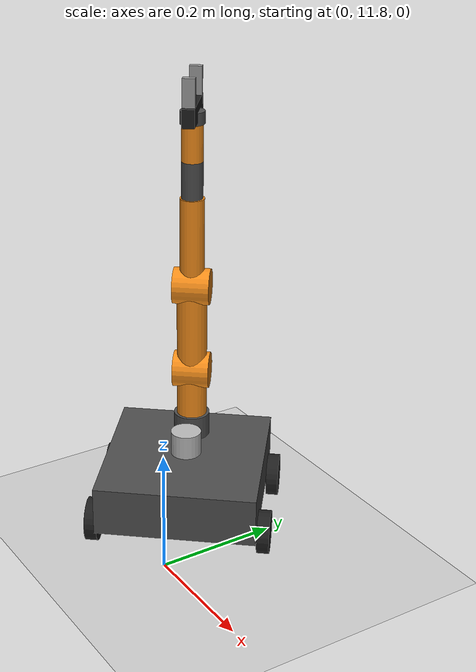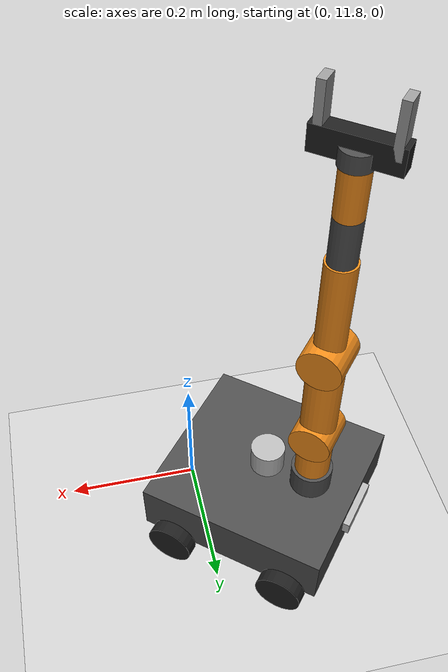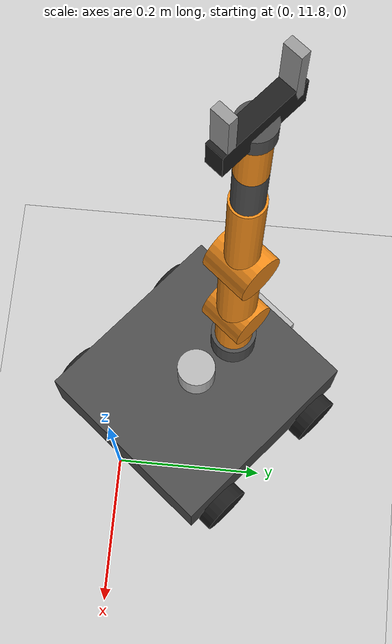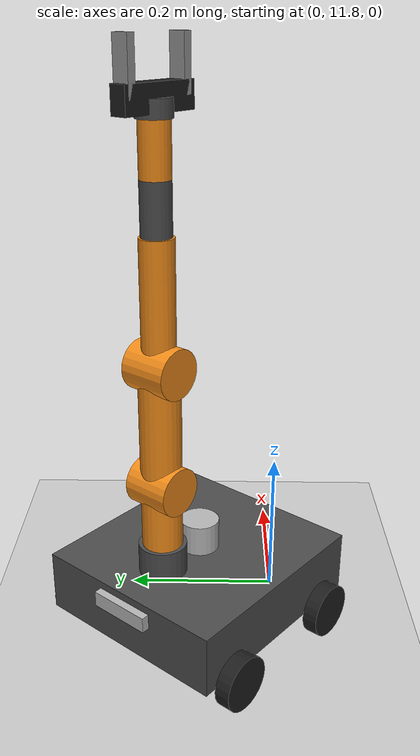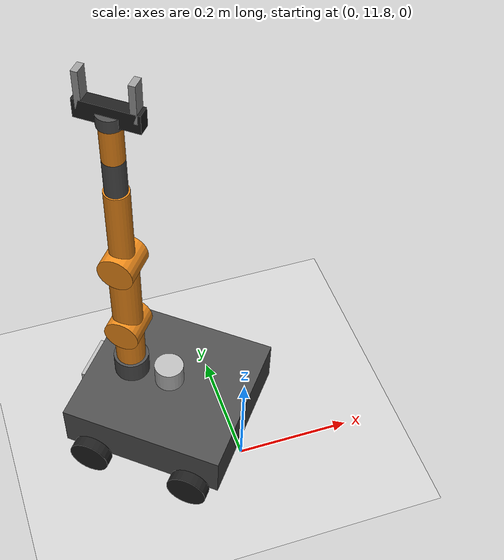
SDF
<sdf version="1.7">
 <world name="default">
  <model name="ground_plane">
   <static>1</static>
   <link name="link">
    <collision name="collision">
     <geometry><plane><normal>0 0 1</normal><size>100 100</size></plane></geometry>
     <surface><friction><ode><mu>100</mu><mu2>50</mu2></ode></friction></surface>
    </collision>
    <visual name="visual">
     <cast_shadows>0</cast_shadows>
     <geometry><plane><normal>0 0 1</normal><size>100 100</size></plane></geometry>
     <material>
      <script><uri>file://media/materials/scripts/gazebo.material</uri><name>Gazebo/Grey</name></script>
     </material>
    </visual>
   </link>
  </model>
  <model name="my_mobile_manipulator">
   <link name="base_footprint">
    <inertial>
     <pose>-0.000929 0 0.041123 0 -0 0</pose>
     <mass>51.65</mass>
     <inertia>
      <ixx>0.334649</ixx>
      <ixy>0</ixy>
      <ixz>-0.0044239</ixz>
      <iyy>0.37151</iyy>
      <iyz>0</iyz>
      <izz>0.640316</izz>
     </inertia>
    </inertial>
    <collision name="base_footprint_fixed_joint_lump__base_link_collision">
     <pose>0 0 0.08 0 -0 0</pose>
     <geometry><box><size>0.28 0.26 0.08</size></box></geometry>
    </collision>
    <collision name="base_footprint_fixed_joint_lump__arm_base_link_collision_1">
     <pose>0.07 0 0.14 0 -0 0</pose>
     <geometry><cylinder><length>0.04</length><radius>0.03</radius></cylinder></geometry>
    </collision>
    <collision name="base_footprint_fixed_joint_lump__camera_link_collision_2">
     <pose>0.14 0 0.1 0 -0 0</pose>
     <geometry><box><size>0.02 0.08 0.02</size></box></geometry>
    </collision>
    <collision name="base_footprint_fixed_joint_lump__laser_link_collision_3">
     <pose>0 0 0.14 0 -0 0</pose>
     <geometry><cylinder><length>0.04</length><radius>0.025</radius></cylinder></geometry>
    </collision>
    <collision name="base_footprint_fixed_joint_lump__rear_left_caster_collision_4">
     <pose>-0.09 0.14 0.035 1.5708 -0 0</pose>
     <geometry><cylinder><length>0.02</length><radius>0.035</radius></cylinder></geometry>
     <surface><friction><ode><mu>0</mu><mu2>0</mu2></ode></friction></surface>
    </collision>
    <collision name="base_footprint_fixed_joint_lump__rear_right_caster_collision_5">
     <pose>-0.09 -0.14 0.035 1.5708 -0 0</pose>
     <geometry><cylinder><length>0.02</length><radius>0.035</radius></cylinder></geometry>
     <surface><friction><ode><mu>0</mu><mu2>0</mu2></ode></friction></surface>
    </collision>
    <visual name="base_footprint_fixed_joint_lump__base_link_visual">
     <pose>0 0 0.08 0 -0 0</pose>
     <geometry><box><size>0.28 0.26 0.08</size></box></geometry>
     <material>
      <script><name>Gazebo/DarkGrey</name><uri>file://media/materials/scripts/gazebo.material</uri></script>
     </material>
    </visual>
    <visual name="base_footprint_fixed_joint_lump__arm_base_link_visual_1">
     <pose>0.07 0 0.14 0 -0 0</pose>
     <geometry><cylinder><length>0.04</length><radius>0.03</radius></cylinder></geometry>
     <material>
      <script><name>Gazebo/DarkGrey</name><uri>file://media/materials/scripts/gazebo.material</uri></script>
     </material>
    </visual>
    <visual name="base_footprint_fixed_joint_lump__camera_link_visual_2">
     <pose>0.14 0 0.1 0 -0 0</pose>
     <geometry><box><size>0.02 0.08 0.02</size></box></geometry>
    </visual>
    <visual name="base_footprint_fixed_joint_lump__laser_link_visual_3">
     <pose>0 0 0.14 0 -0 0</pose>
     <geometry><cylinder><length>0.04</length><radius>0.025</radius></cylinder></geometry>
    </visual>
    <visual name="base_footprint_fixed_joint_lump__rear_left_caster_visual_4">
     <pose>-0.09 0.14 0.035 1.5708 -0 0</pose>
     <geometry><cylinder><length>0.02</length><radius>0.035</radius></cylinder></geometry>
     <material>
      <script><name>Gazebo/FlatBlack</name><uri>file://media/materials/scripts/gazebo.material</uri></script>
     </material>
    </visual>
    <visual name="base_footprint_fixed_joint_lump__rear_right_caster_visual_5">
     <pose>-0.09 -0.14 0.035 1.5708 -0 0</pose>
     <geometry><cylinder><length>0.02</length><radius>0.035</radius></cylinder></geometry>
     <material>
      <script><name>Gazebo/FlatBlack</name><uri>file://media/materials/scripts/gazebo.material</uri></script>
     </material>
    </visual>
    <sensor name="lidar" type="ray">
     <always_on>1</always_on>
     <visualize>1</visualize>
     <update_rate>10</update_rate>
     <ray>
      <scan>
       <horizontal>
        <samples>360</samples>
        <resolution>1</resolution>
        <min_angle>-3.14</min_angle>
        <max_angle>3.14</max_angle>
       </horizontal>
       <vertical><samples>1</samples><min_angle>0</min_angle><max_angle>0</max_angle></vertical>
      </scan>
      <range><min>0.12</min><max>8</max><resolution>0.015</resolution></range>
     </ray>
     <plugin name="scan" filename="libgazebo_ros_ray_sensor.so">
      <ros><remapping>~/out:=scan</remapping></ros>
      <output_type>sensor_msgs/LaserScan</output_type>
      <frame_name>laser_link</frame_name>
     </plugin>
     <pose>0 0 0.14 0 -0 0</pose>
    </sensor>
   </link>
   <joint name="arm_joint_1" type="revolute">
    <pose relative_to="base_footprint">0.07 0 0.16 0 -0 0</pose>
    <parent>base_footprint</parent>
    <child>arm_link_1</child>
    <axis>
     <xyz>0 0 1</xyz>
     <limit><lower>-3.14</lower><upper>3.14</upper><effort>10</effort><velocity>1</velocity></limit>
     <dynamics><spring_reference>0</spring_reference><spring_stiffness>0</spring_stiffness></dynamics>
    </axis>
   </joint>
   <link name="arm_link_1">
    <pose relative_to="arm_joint_1">0 0 0 0 -0 0</pose>
    <inertial>
     <mass>0.5</mass>
     <inertia>
      <ixx>0.000344792</ixx>
      <ixy>0</ixy>
      <ixz>0</ixz>
      <iyy>0.000344792</iyy>
      <iyz>0</iyz>
      <izz>0.00015625</izz>
     </inertia>
    </inertial>
    <collision name="arm_link_1_collision">
     <pose>0 0 0.04 0 -0 0</pose>
     <geometry><cylinder><length>0.08</length><radius>0.025</radius></cylinder></geometry>
    </collision>
    <visual name="arm_link_1_visual">
     <pose>0 0 0.04 0 -0 0</pose>
     <geometry><cylinder><length>0.08</length><radius>0.025</radius></cylinder></geometry>
     <material>
      <script><name>Gazebo/Orange</name><uri>file://media/materials/scripts/gazebo.material</uri></script>
     </material>
    </visual>
    <visual name="arm_link_1_visual_1">
     <pose>0 0 0.08 1.5708 -0 0</pose>
     <geometry><cylinder><length>0.06</length><radius>0.03</radius></cylinder></geometry>
     <material>
      <script><name>Gazebo/Orange</name><uri>file://media/materials/scripts/gazebo.material</uri></script>
     </material>
    </visual>
   </link>
   <joint name="arm_joint_2" type="revolute">
    <pose relative_to="arm_link_1">0 0 0.08 0 -0 0</pose>
    <parent>arm_link_1</parent>
    <child>arm_link_2</child>
    <axis>
     <xyz>0 1 0</xyz>
     <limit><lower>-1.57</lower><upper>1.57</upper><effort>10</effort><velocity>1</velocity></limit>
     <dynamics><spring_reference>0</spring_reference><spring_stiffness>0</spring_stiffness></dynamics>
    </axis>
   </joint>
   <link name="arm_link_2">
    <pose relative_to="arm_joint_2">0 0 0 0 -0 0</pose>
    <inertial>
     <mass>0.4</mass>
     <inertia>
      <ixx>0.0008125</ixx>
      <ixy>0</ixy>
      <ixz>0</ixz>
      <iyy>0.0008125</iyy>
      <iyz>0</iyz>
      <izz>0.000125</izz>
     </inertia>
    </inertial>
    <collision name="arm_link_2_collision">
     <pose>0 0 0.075 0 -0 0</pose>
     <geometry><cylinder><length>0.15</length><radius>0.025</radius></cylinder></geometry>
    </collision>
    <visual name="arm_link_2_visual">
     <pose>0 0 0.075 0 -0 0</pose>
     <geometry><cylinder><length>0.15</length><radius>0.025</radius></cylinder></geometry>
     <material>
      <script><name>Gazebo/Orange</name><uri>file://media/materials/scripts/gazebo.material</uri></script>
     </material>
    </visual>
    <visual name="arm_link_2_visual_1">
     <pose>0 0 0.15 1.5708 -0 0</pose>
     <geometry><cylinder><length>0.06</length><radius>0.03</radius></cylinder></geometry>
     <material>
      <script><name>Gazebo/Orange</name><uri>file://media/materials/scripts/gazebo.material</uri></script>
     </material>
    </visual>
   </link>
   <joint name="arm_joint_3" type="revolute">
    <pose relative_to="arm_link_2">0 0 0.15 0 -0 0</pose>
    <parent>arm_link_2</parent>
    <child>arm_link_3</child>
    <axis>
     <xyz>0 1 0</xyz>
     <limit><lower>-2.5</lower><upper>2.5</upper><effort>10</effort><velocity>1</velocity></limit>
     <dynamics><spring_reference>0</spring_reference><spring_stiffness>0</spring_stiffness></dynamics>
    </axis>
   </joint>
   <link name="arm_link_3">
    <pose relative_to="arm_joint_3">0 0 0 0 -0 0</pose>
    <inertial>
     <mass>0.3</mass>
     <inertia>
      <ixx>0.0005925</ixx>
      <ixy>0</ixy>
      <ixz>0</ixz>
      <iyy>0.0005925</iyy>
      <iyz>0</iyz>
      <izz>6e-05</izz>
     </inertia>
    </inertial>
    <collision name="arm_link_3_collision">
     <pose>0 0 0.075 0 -0 0</pose>
     <geometry><cylinder><length>0.15</length><radius>0.02</radius></cylinder></geometry>
    </collision>
    <visual name="arm_link_3_visual">
     <pose>0 0 0.075 0 -0 0</pose>
     <geometry><cylinder><length>0.15</length><radius>0.02</radius></cylinder></geometry>
     <material>
      <script><name>Gazebo/Orange</name><uri>file://media/materials/scripts/gazebo.material</uri></script>
     </material>
    </visual>
   </link>
   <joint name="arm_joint_4" type="revolute">
    <pose relative_to="arm_link_3">0 0 0.15 0 -0 0</pose>
    <parent>arm_link_3</parent>
    <child>arm_link_4</child>
    <axis>
     <xyz>1 0 0</xyz>
     <limit><lower>-3.14</lower><upper>3.14</upper><effort>5</effort><velocity>1</velocity></limit>
     <dynamics><spring_reference>0</spring_reference><spring_stiffness>0</spring_stiffness></dynamics>
    </axis>
   </joint>
   <link name="arm_link_4">
    <pose relative_to="arm_joint_4">0 0 0 0 -0 0</pose>
    <inertial>
     <mass>0.1</mass>
     <inertia>
      <ixx>3.76562e-05</ixx>
      <ixy>0</ixy>
      <ixz>0</ixz>
      <iyy>3.76562e-05</iyy>
      <iyz>0</iyz>
      <izz>1.53125e-05</izz>
     </inertia>
    </inertial>
    <collision name="arm_link_4_collision">
     <pose>0 0 0.03 0 -0 0</pose>
     <geometry><cylinder><length>0.06</length><radius>0.0175</radius></cylinder></geometry>
    </collision>
    <visual name="arm_link_4_visual">
     <pose>0 0 0.03 0 -0 0</pose>
     <geometry><cylinder><length>0.06</length><radius>0.0175</radius></cylinder></geometry>
     <material>
      <script><name>Gazebo/DarkGrey</name><uri>file://media/materials/scripts/gazebo.material</uri></script>
     </material>
    </visual>
   </link>
   <joint name="arm_joint_5" type="revolute">
    <pose relative_to="arm_link_4">0 0 0.06 0 -0 0</pose>
    <parent>arm_link_4</parent>
    <child>arm_link_5</child>
    <axis>
     <xyz>0 1 0</xyz>
     <limit><lower>-1.57</lower><upper>1.57</upper><effort>5</effort><velocity>1</velocity></limit>
     <dynamics><spring_reference>0</spring_reference><spring_stiffness>0</spring_stiffness></dynamics>
    </axis>
   </joint>
   <link name="arm_link_5">
    <pose relative_to="arm_joint_5">0 0 0 0 -0 0</pose>
    <inertial>
     <mass>0.1</mass>
     <inertia>
      <ixx>3.76562e-05</ixx>
      <ixy>0</ixy>
      <ixz>0</ixz>
      <iyy>3.76562e-05</iyy>
      <iyz>0</iyz>
      <izz>1.53125e-05</izz>
     </inertia>
    </inertial>
    <collision name="arm_link_5_collision">
     <pose>0 0 0.03 0 -0 0</pose>
     <geometry><cylinder><length>0.06</length><radius>0.0175</radius></cylinder></geometry>
    </collision>
    <visual name="arm_link_5_visual">
     <pose>0 0 0.03 0 -0 0</pose>
     <geometry><cylinder><length>0.06</length><radius>0.0175</radius></cylinder></geometry>
     <material>
      <script><name>Gazebo/Orange</name><uri>file://media/materials/scripts/gazebo.material</uri></script>
     </material>
    </visual>
   </link>
   <joint name="arm_joint_6" type="revolute">
    <pose relative_to="arm_link_5">0 0 0.06 0 -0 0</pose>
    <parent>arm_link_5</parent>
    <child>arm_link_6</child>
    <axis>
     <xyz>1 0 0</xyz>
     <limit><lower>-3.14</lower><upper>3.14</upper><effort>5</effort><velocity>1</velocity></limit>
     <dynamics><spring_reference>0</spring_reference><spring_stiffness>0</spring_stiffness></dynamics>
    </axis>
   </joint>
   <link name="arm_link_6">
    <pose relative_to="arm_joint_6">0 0 0 0 -0 0</pose>
    <inertial>
     <pose>0 0 0.01 0 -0 0</pose>
     <mass>0.2</mass>
     <inertia>
      <ixx>4.41667e-05</ixx>
      <ixy>-2.93856e-10</ixy>
      <ixz>0</ixz>
      <iyy>0.000124167</iyy>
      <iyz>0</iyz>
      <izz>0.000106667</izz>
     </inertia>
    </inertial>
    <collision name="arm_link_6_collision">
     <pose>0 0 0.01 0 -0 0</pose>
     <geometry><cylinder><length>0.02</length><radius>0.02</radius></cylinder></geometry>
    </collision>
    <collision name="arm_link_6_fixed_joint_lump__gripper_base_link_collision_1">
     <pose>0 0 0.02 0 -0 1.5708</pose>
     <geometry><box><size>0.02 0.1 0.03</size></box></geometry>
    </collision>
    <visual name="arm_link_6_visual">
     <pose>0 0 0.01 0 -0 0</pose>
     <geometry><cylinder><length>0.02</length><radius>0.02</radius></cylinder></geometry>
     <material>
      <script><name>Gazebo/DarkGrey</name><uri>file://media/materials/scripts/gazebo.material</uri></script>
     </material>
    </visual>
    <visual name="arm_link_6_fixed_joint_lump__gripper_base_link_visual_1">
     <pose>0 0 0.02 0 -0 1.5708</pose>
     <geometry><box><size>0.02 0.1 0.03</size></box></geometry>
     <material>
      <script><name>Gazebo/FlatBlack</name><uri>file://media/materials/scripts/gazebo.material</uri></script>
     </material>
    </visual>
   </link>
   <joint name="finger_joint_1" type="prismatic">
    <pose relative_to="arm_link_6">-0.04 -0 0.02 0 -0 1.5708</pose>
    <parent>arm_link_6</parent>
    <child>gripper_left_finger</child>
    <axis>
     <xyz>0 1 0</xyz>
     <limit><lower>-0.04</lower><upper>0</upper><effort>10</effort><velocity>0.5</velocity></limit>
     <dynamics><spring_reference>0</spring_reference><spring_stiffness>0</spring_stiffness></dynamics>
    </axis>
   </joint>
   <link name="gripper_left_finger">
    <pose relative_to="finger_joint_1">0 0 0 0 -0 0</pose>
    <inertial>
     <mass>0.05</mass>
     <inertia>
      <ixx>1.54167e-05</ixx>
      <ixy>0</ixy>
      <ixz>0</ixz>
      <iyy>1.66667e-05</iyy>
      <iyz>0</iyz>
      <izz>2.08333e-06</izz>
     </inertia>
    </inertial>
    <collision name="gripper_left_finger_collision">
     <pose>0 0 0.03 0 -0 0</pose>
     <geometry><box><size>0.02 0.01 0.06</size></box></geometry>
    </collision>
    <visual name="gripper_left_finger_visual">
     <pose>0 0 0.03 0 -0 0</pose>
     <geometry><box><size>0.02 0.01 0.06</size></box></geometry>
     <material>
      <script><name>Gazebo/Grey</name><uri>file://media/materials/scripts/gazebo.material</uri></script>
     </material>
    </visual>
   </link>
   <joint name="finger_joint_2" type="prismatic">
    <pose relative_to="arm_link_6">0.04 0 0.02 0 -0 1.5708</pose>
    <parent>arm_link_6</parent>
    <child>gripper_right_finger</child>
    <axis>
     <xyz>0 1 0</xyz>
     <limit><lower>0</lower><upper>0.04</upper><effort>10</effort><velocity>0.5</velocity></limit>
     <dynamics><spring_reference>0</spring_reference><spring_stiffness>0</spring_stiffness></dynamics>
    </axis>
   </joint>
   <link name="gripper_right_finger">
    <pose relative_to="finger_joint_2">0 0 0 0 -0 0</pose>
    <inertial>
     <mass>0.05</mass>
     <inertia>
      <ixx>1.54167e-05</ixx>
      <ixy>0</ixy>
      <ixz>0</ixz>
      <iyy>1.66667e-05</iyy>
      <iyz>0</iyz>
      <izz>2.08333e-06</izz>
     </inertia>
    </inertial>
    <collision name="gripper_right_finger_collision">
     <pose>0 0 0.03 0 -0 0</pose>
     <geometry><box><size>0.02 0.01 0.06</size></box></geometry>
    </collision>
    <visual name="gripper_right_finger_visual">
     <pose>0 0 0.03 0 -0 0</pose>
     <geometry><box><size>0.02 0.01 0.06</size></box></geometry>
     <material>
      <script><name>Gazebo/Grey</name><uri>file://media/materials/scripts/gazebo.material</uri></script>
     </material>
    </visual>
   </link>
   <joint name="front_left_wheel_joint" type="revolute">
    <pose relative_to="base_footprint">0.09 0.14 0.035 0 -0 0</pose>
    <parent>base_footprint</parent>
    <child>front_left_wheel</child>
    <axis>
     <xyz>0 1 0</xyz>
     <limit><lower>-1e+16</lower><upper>1e+16</upper></limit>
     <dynamics>
      <damping>10</damping>
      <friction>2</friction>
      <spring_reference>0</spring_reference>
      <spring_stiffness>0</spring_stiffness>
     </dynamics>
    </axis>
   </joint>
   <link name="front_left_wheel">
    <pose relative_to="front_left_wheel_joint">0 0 0 0 -0 0</pose>
    <inertial>
     <mass>2</mass>
     <inertia>
      <ixx>0.000679167</ixx>
      <ixy>0</ixy>
      <ixz>0</ixz>
      <iyy>0.000679167</iyy>
      <iyz>0</iyz>
      <izz>0.001225</izz>
     </inertia>
    </inertial>
    <collision name="front_left_wheel_collision">
     <pose>0 0 0 1.5708 -0 0</pose>
     <geometry><cylinder><length>0.02</length><radius>0.035</radius></cylinder></geometry>
     <surface>
      <contact><ode><kp>1e+07</kp><kd>1</kd></ode></contact>
      <friction><ode><mu>2000</mu><mu2>2000</mu2><fdir1>1 0 0</fdir1></ode></friction>
     </surface>
    </collision>
    <visual name="front_left_wheel_visual">
     <pose>0 0 0 1.5708 -0 0</pose>
     <geometry><cylinder><length>0.02</length><radius>0.035</radius></cylinder></geometry>
     <material>
      <script><name>Gazebo/FlatBlack</name><uri>file://media/materials/scripts/gazebo.material</uri></script>
     </material>
    </visual>
   </link>
   <joint name="front_right_wheel_joint" type="revolute">
    <pose relative_to="base_footprint">0.09 -0.14 0.035 0 -0 0</pose>
    <parent>base_footprint</parent>
    <child>front_right_wheel</child>
    <axis>
     <xyz>0 1 0</xyz>
     <limit><lower>-1e+16</lower><upper>1e+16</upper></limit>
     <dynamics>
      <damping>10</damping>
      <friction>2</friction>
      <spring_reference>0</spring_reference>
      <spring_stiffness>0</spring_stiffness>
     </dynamics>
    </axis>
   </joint>
   <link name="front_right_wheel">
    <pose relative_to="front_right_wheel_joint">0 0 0 0 -0 0</pose>
    <inertial>
     <mass>2</mass>
     <inertia>
      <ixx>0.000679167</ixx>
      <ixy>0</ixy>
      <ixz>0</ixz>
      <iyy>0.000679167</iyy>
      <iyz>0</iyz>
      <izz>0.001225</izz>
     </inertia>
    </inertial>
    <collision name="front_right_wheel_collision">
     <pose>0 0 0 1.5708 -0 0</pose>
     <geometry><cylinder><length>0.02</length><radius>0.035</radius></cylinder></geometry>
     <surface>
      <contact><ode><kp>1e+07</kp><kd>1</kd></ode></contact>
      <friction><ode><mu>2000</mu><mu2>2000</mu2><fdir1>1 0 0</fdir1></ode></friction>
     </surface>
    </collision>
    <visual name="front_right_wheel_visual">
     <pose>0 0 0 1.5708 -0 0</pose>
     <geometry><cylinder><length>0.02</length><radius>0.035</radius></cylinder></geometry>
     <material>
      <script><name>Gazebo/FlatBlack</name><uri>file://media/materials/scripts/gazebo.material</uri></script>
     </material>
    </visual>
   </link>
   <plugin name="gazebo_ros2_control" filename="libgazebo_ros2_control.so">
    <parameters>/home/daniel/ros2_ws/install/final_assignment_pkg/share/final_assignment_pkg/config/controllers.yaml</parameters>
   </plugin>
   <static>0</static>
   <plugin name="diff_drive" filename="libgazebo_ros_diff_drive.so">
    <ros><namespace>/</namespace></ros>
    <left_joint>front_left_wheel_joint</left_joint>
    <right_joint>front_right_wheel_joint</right_joint>
    <wheel_separation>0.28</wheel_separation>
    <wheel_diameter>0.07</wheel_diameter>
    <max_wheel_torque>200</max_wheel_torque>
    <max_wheel_acceleration>1.0</max_wheel_acceleration>
    <publish_odom>1</publish_odom>
    <publish_odom_tf>1</publish_odom_tf>
    <publish_wheel_tf>0</publish_wheel_tf>
    <odometry_frame>odom</odometry_frame>
    <robot_base_frame>base_footprint</robot_base_frame>
   </plugin>
   <pose>-0.09876 11.9011 0.009994 0 1.5e-05 2.45184</pose>
  </model>
 </world>
</sdf>
